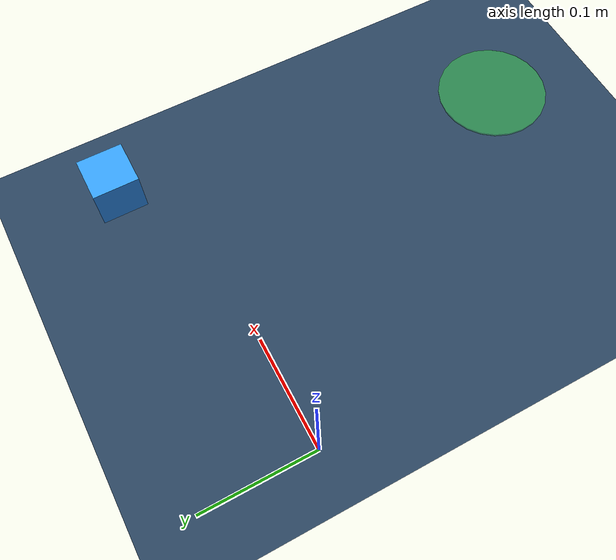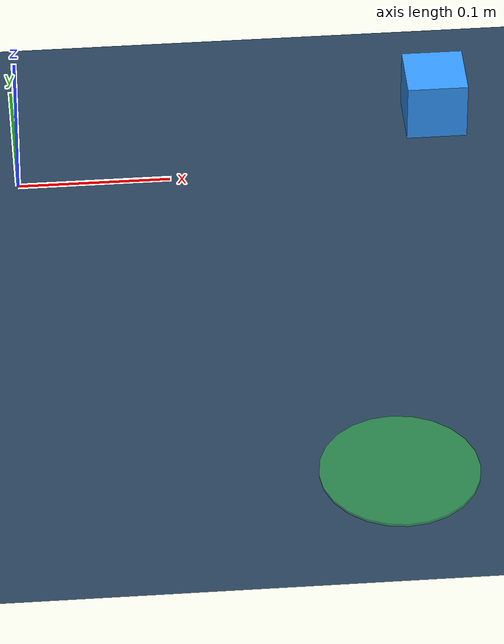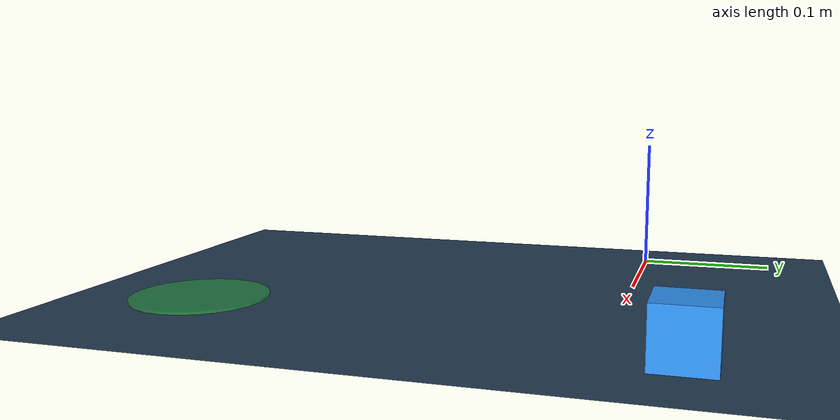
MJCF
<?xml version="1.0"?>
<mujoco model="single_pick_place">
  <compiler angle="radian" autolimits="true"/>
  <option integrator="implicitfast" timestep="0.002" cone="elliptic" iterations="10" ls_iterations="20" impratio="10"/>
  <include file="../scene_common.xml"/>
  <worldbody>
    <light pos="1 1 3.5" dir="-0.227 -0.268 -0.936" directional="false" cutoff="25" exponent="1" diffuse="0.5 0.5 0.5"/>
    <light pos="0 0 3.5" dir="0 0 -1" directional="true" diffuse="0.5 0.5 0.5" castshadow="false"/>
    <geom name="floor" type="plane" size="0 0 0.01" pos="0 0 0" material="groundplane" condim="3" friction="0.5 0.005 0.0001"/>
    <body name="block1" pos="0.28 0.05 0.02">
      <joint type="free" name="block1:joint" damping="0" frictionloss="0" armature="0"/>
      <geom type="box" size="0.02 0.02 0.02" rgba="0.2 0.6 1.0 1" mass="0.02"/>
    </body>
    <body name="target" pos="0.22 -0.30 0.001">
      <geom name="target_disc" type="cylinder" size="0.05 0.001" rgba="0.2 1.0 0.2 0.35" contype="0" conaffinity="0"/>
    </body>
    <frame name="robot_mount"/>
    <body name="overview_camera_rig" pos="-0.10 0.1 0.80" euler="-1.5707963267948966 -1.5707963267948966 0">
      <body name="overview_camera_tilt" euler="1.00 0 0">
        <camera name="overview" mode="fixed" euler="0 0 3.141592653589793" fovy="58"/>
      </body>
    </body>
  </worldbody>
</mujoco>

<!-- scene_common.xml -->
<mujocoinclude>
  <visual>
    <scale contactwidth="0.1" contactheight="0.05" forcewidth="0.02" framelength="0.75" framewidth="0.025" camera="0.2"/>
    <headlight diffuse="0.0 0.0 0.0" ambient="0.3 0.3 0.3" specular="0 0 0"/>
    <rgba haze="0.62 0.80 0.96 1"/>
    <quality shadowsize="8192" offsamples="8"/>
  </visual>
  <default>
    <geom condim="4"/>
  </default>
  <asset>
    <texture type="skybox" builtin="gradient" rgb1="0.53 0.81 0.98" rgb2="0.20 0.35 0.55" width="512" height="3072"/>
    <texture type="2d" name="groundplane" builtin="checker" mark="edge" rgb1="0.2 0.3 0.4" rgb2="0.1 0.2 0.3" markrgb="0.8 0.8 0.8" width="300" height="300"/>
    <material name="groundplane" texture="groundplane" texuniform="true" texrepeat="5 5" reflectance="0.2"/>
  </asset>
</mujocoinclude>
